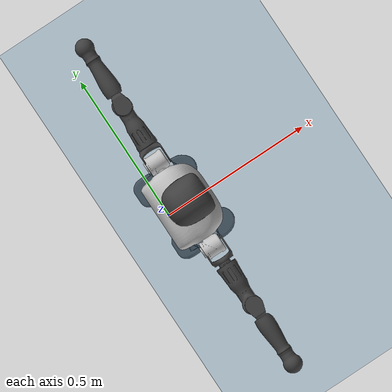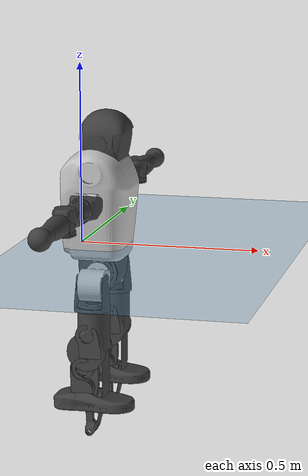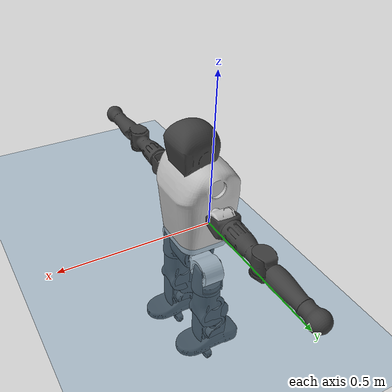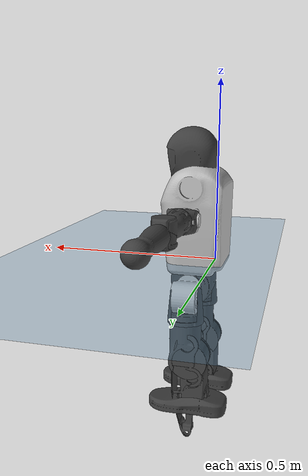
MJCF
<mujoco model="T1">
  <compiler angle="radian" assetdir="assets" balanceinertia="true" inertiafromgeom="false"/>

  <option timestep="0.005" density="1.2" viscosity="2e-05"/>

  <size nkey="1"/>

  <visual>
    <quality shadowsize="8192"/>
    <map shadowclip="0.5"/>
  </visual>

  <default>
    <default class="/">
      <joint armature="0.01" damping="0.01" frictionloss="0.1"/>
      <geom contype="0" conaffinity="0" group="1" solref="-1000 -80"/>
      <site size="0.01 0.005 0.005" group="5"/>
      <general forcelimited="true" biastype="affine" gainprm="25" biasprm="0 -25 -0.6"/>
      <default class="t1">
        <geom rgba="0.25 0.25 0.25 1"/>
        <default class="visual">
          <geom type="mesh" group="2"/>
        </default>
        <default class="collision">
          <geom group="3"/>
        </default>
        <default class="foot">
          <geom size="0.1115 0.05 0.015" type="box" condim="6" group="4" priority="1" solimp="0.015 1 0.015"/>
        </default>
        <default class="reward_collision_sphere">
          <geom group="5" rgba="1 0 0 1"/>
        </default>
      </default>
    </default>
  </default>

  <asset>
    <texture type="skybox" colorspace="auto" name="//unnamed_texture_0" builtin="gradient" rgb1="0.95 0.95 0.95" rgb2="0.95 0.95 0.95" width="100" height="600"/>
    <texture type="2d" colorspace="auto" name="texplane" builtin="checker" rgb1="0.345 0.575 0.748" rgb2="0.345 0.575 0.748" markrgb="1 1 1" width="512" height="512"/>
    <material name="MatPlane" class="/" texture="texplane" texuniform="true" texrepeat="2 2" specular="0.9"/>
    <mesh name="Trunk" class="/" file="Trunk.stl"/>
    <mesh name="H1" class="/" file="H1.stl"/>
    <mesh name="H2" class="/" file="H2.stl"/>
    <mesh name="AL1" class="/" file="AL1.stl"/>
    <mesh name="AL2" class="/" file="AL2.stl"/>
    <mesh name="AL3" class="/" file="AL3.stl"/>
    <mesh name="left_hand_link" class="/" file="left_hand_link.stl"/>
    <mesh name="AR1" class="/" file="AR1.stl"/>
    <mesh name="AR2" class="/" file="AR2.stl"/>
    <mesh name="AR3" class="/" file="AR3.stl"/>
    <mesh name="right_hand_link" class="/" file="right_hand_link.stl"/>
    <mesh name="Waist" class="/" file="Waist.stl"/>
    <mesh name="Hip_Pitch_Left" class="/" file="Hip_Pitch_Left.stl"/>
    <mesh name="Hip_Roll_Left" class="/" file="Hip_Roll_Left.stl"/>
    <mesh name="Hip_Yaw_Left" class="/" file="Hip_Yaw_Left.stl"/>
    <mesh name="Shank_Left" class="/" file="Shank_Left.stl"/>
    <mesh name="Ankle_Cross_Left" class="/" file="Ankle_Cross_Left.stl"/>
    <mesh name="left_foot_link" class="/" file="left_foot_link.stl"/>
    <mesh name="Hip_Pitch_Right" class="/" file="Hip_Pitch_Right.stl"/>
    <mesh name="Hip_Roll_Right" class="/" file="Hip_Roll_Right.stl"/>
    <mesh name="Hip_Yaw_Right" class="/" file="Hip_Yaw_Right.stl"/>
    <mesh name="Shank_Right" class="/" file="Shank_Right.stl"/>
    <mesh name="Ankle_Cross_Right" class="/" file="Ankle_Cross_Right.stl"/>
    <mesh name="right_foot_link" class="/" file="right_foot_link.stl"/>
  </asset>

  <worldbody>
    <geom name="floor" class="/" size="100 100 0.125" type="plane" group="0" material="MatPlane"/>
    <light name="toplight_shadow" class="/" pos="0 0 5" dir="0.0990148 0.0990148 -0.990148" type="directional" ambient="0.04 0.04 0.04" diffuse="0.55 0.55 0.55" specular="0.12 0.12 0.12"/>
    <light name="toplight_fill" class="/" pos="0 0 5" dir="0.0990148 0.0990148 -0.990148" type="directional" castshadow="false" ambient="0.04 0.04 0.04" diffuse="0.3 0.3 0.3" specular="0.08 0.08 0.08"/>
    <body name="trunk" childclass="t1" pos="-0.00116932 0.000144393 -0.00211689" quat="0.999999 0.000311222 0.000618716 -0.000787614">
      <inertial pos="0.0546976 -0.00356551 0.0643396" quat="0.999968 -0.000799592 -0.0068946 -0.00402136" mass="8.37427" diaginertia="0.0924617 0.0838785 0.0058877"/>
      <joint name="//unnamed_joint_0" type="free" armature="0" damping="0" frictionloss="0"/>
      <geom name="//unnamed_geom_1" class="visual" rgba="0.76 0.76 0.76 1" mesh="Trunk"/>
      <geom name="//unnamed_geom_2" class="collision" size="0.0657116 0.0876154 0.131423" pos="0.0596356 0 0.0753003" type="box"/>
      <geom name="//unnamed_geom_3" class="reward_collision_sphere" size="0.100758" pos="0.0596356 0 0.0627503"/>
      <geom name="//unnamed_geom_4" class="reward_collision_sphere" size="0.0131423" pos="0.0596356 0.0855979 0"/>
      <geom name="//unnamed_geom_5" class="reward_collision_sphere" size="0.0131423" pos="0.0596356 -0.0855979 0"/>
      <geom name="//unnamed_geom_6" class="reward_collision_sphere" size="0.0131423" pos="0.0596356 0.107753 0.11295"/>
      <geom name="//unnamed_geom_7" class="reward_collision_sphere" size="0.0131423" pos="0.0596356 -0.107753 0.11295"/>
      <site name="imu" pos="-0.0265302 0.0168996 0.00774636" size="0.00876154"/>
      <camera name="track" pos="0 -2.01407 0" quat="0.707107 0.707107 0 0" mode="trackcom"/>
      <camera name="ego_camera" pos="0.121259 0 0.263551" quat="-0.5 -0.5 0.5 0.5"/>
      <body name="H1" pos="0.0597026 -0.000345426 0.151586" quat="1 0.000120634 -0.000141728 6.30902e-05">
        <inertial pos="0.000873305 -0.00394175 0.0335796" quat="0.758656 -0.0200896 0.00634341 0.65115" mass="0.288698" diaginertia="0.000223252 0.000229976 1.3995e-05"/>
        <joint name="AAHead_yaw" pos="0 0 0" axis="-0.000619738 0.000965083 0.999999" range="-1.54149 1.56466" armature="0.00981127" damping="0.0159938" frictionloss="0.0771451"/>
        <geom name="//unnamed_geom_8" class="visual" mesh="H1"/>
        <body name="H2" pos="-0.000787294 0.00394177 0.0366672" quat="1 -4.68378e-05 -1.27709e-05 2.18888e-05">
          <inertial pos="0.00206756 -0.00317564 0.0612039" quat="0.987562 0.108888 -0.0841293 -0.0760695" mass="0.400992" diaginertia="0.00204101 0.00195968 0.000164428"/>
          <joint name="Head_pitch" pos="0 0 0" axis="-0.0118543 -0.999924 -0.00335984" range="-1.23603 0.335256" armature="0.010079" damping="0.00483908" frictionloss="0.0874535"/>
          <geom name="//unnamed_geom_9" class="visual" mesh="H2"/>
          <geom name="//unnamed_geom_10" class="collision" size="0.0700923" pos="0.00993927 0 0.0690253"/>
          <geom name="//unnamed_geom_11" class="reward_collision_sphere" size="0.0788539" pos="0.0198785 0 0.0627503"/>
        </body>
      </body>
      <body name="AL1" pos="0.0590532 0.10906 0.139927" quat="1 -0.000185889 -0.000176714 0.000261648">
        <inertial pos="0.000764834 0.0463003 -0.0040915" quat="0.501429 0.495722 -0.506169 0.49661" mass="0.344395" diaginertia="0.00128154 0.00134049 2.89117e-05"/>
        <joint name="Left_Shoulder_Pitch" pos="0 0 0" axis="-0.00784849 0.99994 -0.00767348" stiffness="0.0187461" range="-3.23642 1.23134" armature="0.00983026" damping="0.0200335" frictionloss="0.0908647"/>
        <geom name="//unnamed_geom_12" class="visual" rgba="0.76 0.76 0.76 1" mesh="AL1"/>
        <body name="AL2" pos="0.00412946 0.0437452 0.0026419" quat="0.999996 -0.00161936 0.000140237 -0.00211346">
          <inertial pos="0.00566428 0.0382663 0.00179259" quat="0.495273 0.506279 -0.492775 0.505528" mass="0.0945006" diaginertia="0.000360721 0.000330269 1.57673e-05"/>
          <joint name="Left_Shoulder_Roll" pos="0 0 0" axis="-0.999547 -0.0301043 0.000408882" stiffness="0.000135217" range="-1.56853 1.7294" armature="0.00910693" damping="0.0304431" frictionloss="0.0793422"/>
          <geom name="//unnamed_geom_13" class="visual" mesh="AL2"/>
          <body name="AL3" pos="0.00190742 0.0574077 0.00240164" quat="0.999996 0.00177911 -0.00218985 -0.000848319">
            <inertial pos="0.00211597 0.0875297 0.000292001" quat="0.709914 0.704194 -0.00778125 -0.00854402" mass="0.653341" diaginertia="0.0116212 0.0127457 5.66612e-05"/>
            <joint name="Left_Elbow_Pitch" pos="0 0 0" axis="7.56556e-07 -1 1.53426e-05" stiffness="0.0165403" range="-2.29535 2.26131" armature="0.00897838" damping="0.00914801" frictionloss="0.0875536"/>
            <geom name="//unnamed_geom_14" class="visual" mesh="AL3"/>
            <geom name="//unnamed_geom_15" class="collision" size="0.0262846 0.0657116" pos="0 0.0503517 0" quat="0.707105 0.707108 0 0" type="cylinder"/>
            <geom name="//unnamed_geom_16" class="reward_collision_sphere" size="0.0315416"/>
            <body name="left_hand_link" pos="0.00253461 0.143163 -0.000119412" quat="0.999998 -0.000123795 -0.00188262 0.000940749">
              <inertial pos="-0.00117836 0.109241 0.00415595" quat="0.696702 0.717313 -0.00349391 -0.00746726" mass="0.233683" diaginertia="0.00856961 0.00909578 2.21804e-05"/>
              <joint name="Left_Elbow_Yaw" pos="0 0 0" axis="-0.00764731 0.011595 0.999904" range="-2.43634 -0.044667" armature="0.00858452" damping="0.0115211" frictionloss="0.0644114"/>
              <geom name="//unnamed_geom_17" class="visual" mesh="left_hand_link"/>
              <geom name="//unnamed_geom_18" class="collision" size="0.0262846 0.0766635" pos="0 0.130914 0" quat="0.707105 0.707108 0 0" type="cylinder"/>
              <geom name="//unnamed_geom_19" class="reward_collision_sphere" size="0.0438077"/>
              <geom name="//unnamed_geom_20" class="reward_collision_sphere" size="0.0306654" pos="0 0.110774 0"/>
              <geom name="//unnamed_geom_21" class="reward_collision_sphere" size="0.0306654" pos="0 0.216512 0"/>
            </body>
          </body>
        </body>
      </body>
      <body name="AR1" pos="0.0600963 -0.108087 0.140079" quat="0.999998 -0.000377324 0.00177993 0.000416757">
        <inertial pos="-4.55471e-05 -0.047667 0.00275452" quat="0.506281 0.499053 -0.505054 0.489434" mass="0.351805" diaginertia="0.00130802 0.00126568 2.75461e-05"/>
        <joint name="Right_Shoulder_Pitch" pos="0 0 0" axis="0.00396509 -0.999991 0.00121058" range="-1.31246 3.25545" armature="0.00842525" damping="0" frictionloss="0.0913251"/>
        <geom name="//unnamed_geom_22" class="visual" rgba="0.76 0.76 0.76 1" mesh="AR1"/>
        <body name="AR2" pos="0.0041113 -0.0491631 0.000785188" quat="1 0.000105011 0.000332754 0.000219282">
          <inertial pos="0.00357312 -0.0364822 0.00123707" quat="0.511373 0.487423 -0.512421 0.488202" mass="0.113213" diaginertia="0.000415819 0.00039086 1.7029e-05"/>
          <joint name="Right_Shoulder_Roll" pos="0 0 0" axis="-0.999986 0.000829801 -0.0053113" range="-1.72702 1.65554" armature="0.00885125" damping="0.017233" frictionloss="0.104388"/>
          <geom name="//unnamed_geom_23" class="visual" mesh="AR2"/>
          <body name="AR3" pos="-0.000672397 -0.0662651 -0.0033362" quat="0.999999 8.4556e-05 0.000932331 0.000427351">
            <inertial pos="2.67632e-05 -0.0883334 -0.00191438" quat="0.722186 0.691386 -0.00799049 -0.0192086" mass="0.672533" diaginertia="0.0122493 0.0130279 5.7911e-05"/>
            <joint name="Right_Elbow_Pitch" pos="0 0 0" axis="-0.00275465 0.999991 0.00309243" range="-2.26387 2.26941" armature="0.00761951" damping="0.00502426" frictionloss="0.0679601"/>
            <geom name="//unnamed_geom_24" class="visual" mesh="AR3"/>
            <geom name="//unnamed_geom_25" class="collision" size="0.0262846 0.0657116" pos="0 -0.0503517 0" quat="0.707105 0.707108 0 0" type="cylinder"/>
            <geom name="//unnamed_geom_26" class="reward_collision_sphere" size="0.0315416"/>
            <body name="right_hand_link" pos="0.00332557 -0.150443 0.0022411" quat="1 -0.000338787 -7.44963e-05 8.08891e-06">
              <inertial pos="0.00231137 -0.110122 -0.0036237" quat="0.694541 0.719406 0.00732527 0.00366878" mass="0.240847" diaginertia="0.00845653 0.00894583 2.23638e-05"/>
              <joint name="Right_Elbow_Yaw" pos="0 0 0" axis="-0.0137764 0.00132977 0.999904" range="0.0425122 2.48588" armature="0.00626206" damping="0.00891044" frictionloss="0.088231"/>
              <geom name="//unnamed_geom_27" class="visual" mesh="right_hand_link"/>
              <geom name="//unnamed_geom_28" class="collision" size="0.0262846 0.0766635" pos="0 -0.130914 0" quat="0.707105 0.707108 0 0" type="cylinder"/>
              <geom name="//unnamed_geom_29" class="reward_collision_sphere" size="0.0438077"/>
              <geom name="//unnamed_geom_30" class="reward_collision_sphere" size="0.0306654" pos="0 -0.110774 0"/>
              <geom name="//unnamed_geom_31" class="reward_collision_sphere" size="0.0306654" pos="0 -0.216512 0"/>
            </body>
          </body>
        </body>
      </body>
      <body name="Waist" pos="0.0623814 0.00246387 -0.0702895" quat="1 0.000359835 0.000243568 -0.000466074">
        <inertial pos="-0.00223238 -0.00137338 0.00276813" quat="0.983817 -0.0013521 -0.178961 0.00867245" mass="1.76915" diaginertia="0.00534582 0.00594477 0.000488603"/>
        <joint name="Waist" pos="0 0 0" axis="0.00383914 -0.00821612 0.999959" range="-1.67901 1.59581" armature="0.00989365" damping="0.0201397" frictionloss="0.0786818"/>
        <geom name="//unnamed_geom_32" class="visual" mesh="Waist"/>
        <body name="Hip_Pitch_Left" pos="0.00411378 0.103503 0.00116281" quat="0.999997 0.00114324 -0.00112367 0.0015651">
          <inertial pos="0.0011742 -0.0124733 -0.0108901" quat="0.974727 0.223041 0.0125671 0.00179338" mass="0.668545" diaginertia="0.00176096 0.00140807 0.000121584"/>
          <joint name="Left_Hip_Pitch" pos="0 0 0" axis="-0.0131373 0.999793 0.0155567" range="-1.78443 1.56049" armature="0.00876581" damping="0.0204181" frictionloss="0.0874683"/>
          <geom name="//unnamed_geom_33" class="visual" rgba="0.76 0.76 0.76 1" mesh="Hip_Pitch_Left"/>
          <body name="Hip_Roll_Left" pos="0.000556049 0.000159259 -0.0124314" quat="0.999999 -0.000425634 0.00160629 0.000216831">
            <inertial pos="0.00417477 0.000375837 -0.0364501" quat="0.706532 -0.00633795 -0.00571256 0.707629" mass="0.258699" diaginertia="0.00167061 0.00164908 5.22996e-05"/>
            <joint name="Left_Hip_Roll" pos="0 0 0" axis="-0.999968 -0.000765703 0.00798635" stiffness="0.00320206" range="-1.51726 0.159695" armature="0.00843845" damping="0.000589342" frictionloss="0.0782181"/>
            <geom name="//unnamed_geom_34" class="visual" mesh="Hip_Roll_Left"/>
            <geom name="//unnamed_geom_35" class="reward_collision_sphere" size="0.0481885"/>
            <body name="Hip_Yaw_Left" pos="-0.00236437 -6.44127e-05 -0.0480302" quat="1 4.95664e-05 -0.0001508 0.000237824">
              <inertial pos="-0.00440633 -0.00121693 -0.0584471" quat="0.687578 -0.0530909 -0.0191987 0.723913" mass="1.43755" diaginertia="0.0256457 0.0279419 0.000253402"/>
              <joint name="Left_Hip_Yaw" pos="0 0 0" axis="0.00928421 -0.0147725 -0.999848" stiffness="0.0091088" range="-0.99364 1.06731" armature="0.00857958" damping="0" frictionloss="0.0885526"/>
              <geom name="//unnamed_geom_36" class="visual" mesh="Hip_Yaw_Left"/>
              <geom name="//unnamed_geom_37" class="collision" size="0.0438077 0.0700923" type="cylinder"/>
              <body name="Shank_Left" pos="-0.0129885 -0.00077051 -0.0840501" quat="1 -0.000213661 -8.96559e-05 -2.47096e-05">
                <inertial pos="-0.00647578 0.00212152 -0.0763299" quat="0.997212 0.00246195 -0.0335263 0.0666145" mass="1.15343" diaginertia="0.0325548 0.0345385 0.000175178"/>
                <joint name="Left_Knee_Pitch" pos="0 0 0" axis="0.00224087 0.999986 0.00475286" range="0.0307086 2.35936" armature="0.00972178" damping="0.000307485" frictionloss="0.074606"/>
                <geom name="//unnamed_geom_38" class="visual" mesh="Shank_Left"/>
                <geom name="//unnamed_geom_39" class="collision" size="0.0438077 0.0657116" pos="0 0 -0.0753003" type="cylinder"/>
                <geom name="//unnamed_geom_40" class="reward_collision_sphere" size="0.05695"/>
                <body name="Ankle_Cross_Left" pos="-0.00202951 -1.41888e-05 -0.174341" quat="1 6.29719e-05 1.71221e-05 5.71106e-05">
                  <inertial pos="-0.00579029 0.000496023 0.000491298" quat="0.434732 0.55367 0.554062 0.444379" mass="0.0482846" diaginertia="2.57706e-05 2.56323e-05 1.05222e-06"/>
                  <joint name="Left_Ankle_Pitch" pos="0 0 0" axis="0.000406711 0.999998 -0.00184822" range="-0.75507 0.349853" armature="0.00862987" damping="0.0220355" frictionloss="0.073113"/>
                  <geom name="//unnamed_geom_41" class="visual" mesh="Ankle_Cross_Left"/>
                  <body name="left_foot_link" pos="-0.0037726 -8.79177e-05 -0.00271067" quat="1 0.00036218 0.000628415 0.000525738">
                    <inertial pos="-0.00211555 0.00419685 -0.00322862" quat="0.000273132 0.619022 -0.00203162 0.785371" mass="0.459356" diaginertia="0.00260778 0.0024791 0.000220332"/>
                    <joint name="Left_Ankle_Roll" pos="0 0 0" axis="-0.999933 0.00994955 -0.0059473" stiffness="0.00481796" range="-0.431253 0.411379" armature="0.00841692" damping="0" frictionloss="0.0970629"/>
                    <geom name="//unnamed_geom_42" class="visual" mesh="left_foot_link"/>
                    <geom name="left_foot" class="foot" size="0.109554 0.0330549 0.0135505" pos="0.00993927 0 -0.00941254"/>
                    <geom name="//unnamed_geom_44" class="reward_collision_sphere" size="0.04556" pos="0.00993927 0 -0.00941254"/>
                    <geom name="//unnamed_geom_45" class="reward_collision_sphere" size="0.0262846" pos="0.094423 -0.0231618 -0.00941254"/>
                    <geom name="//unnamed_geom_46" class="reward_collision_sphere" size="0.0262846" pos="-0.0695749 -0.0231618 -0.00941254"/>
                    <site name="left_foot" class="foot" pos="0.00993927 0 -0.00941254" size="0.00876154"/>
                  </body>
                </body>
              </body>
            </body>
          </body>
        </body>
        <body name="Hip_Pitch_Right" pos="0.000372247 -0.103965 -0.00431247" quat="1 -0.000137329 2.74749e-05 -0.000150869">
          <inertial pos="0.000704042 0.0100214 -0.0155425" quat="0.97262 -0.232171 0.00660595 0.00797265" mass="0.708088" diaginertia="0.00180023 0.00157109 0.000121888"/>
          <joint name="Right_Hip_Pitch" pos="0 0 0" axis="0.00342935 -0.999934 0.0109353" range="-1.56372 1.82469" armature="0.00768182" damping="0" frictionloss="0.0886697"/>
          <geom name="//unnamed_geom_47" class="visual" rgba="0.76 0.76 0.76 1" mesh="Hip_Pitch_Right"/>
          <body name="Hip_Roll_Right" pos="-0.000973896 -0.000499394 -0.0132295" quat="0.999996 -3.38337e-05 0.00158668 -0.00227281">
            <inertial pos="-0.00394736 0.00143142 -0.0327313" quat="0.703301 -0.0120986 -0.0136255 0.710659" mass="0.264635" diaginertia="0.00174694 0.00165068 5.06999e-05"/>
            <joint name="Right_Hip_Roll" pos="0 0 0" axis="-1 -0.00044112 -0.00078553" range="-0.182242 1.52874" armature="0.00948708" damping="0.0142612" frictionloss="0.0886841"/>
            <geom name="//unnamed_geom_48" class="visual" mesh="Hip_Roll_Right"/>
            <geom name="//unnamed_geom_49" class="reward_collision_sphere" size="0.0481885"/>
            <body name="Hip_Yaw_Right" pos="0.00156023 0.0020149 -0.0548695" quat="0.999998 -0.000565306 -0.00165636 -0.000255492">
              <inertial pos="-0.00697923 -0.00313771 -0.0544192" quat="0.714743 -0.0338882 -0.0363835 0.697618" mass="1.42591" diaginertia="0.0227575 0.0232644 0.0002435"/>
              <joint name="Right_Hip_Yaw" pos="0 0 0" axis="-0.00884767 0.00870732 -0.999923" stiffness="0.0138777" range="-0.987085 1.11282" armature="0.00831351" damping="0.0176709" frictionloss="0.104479"/>
              <geom name="//unnamed_geom_50" class="visual" mesh="Hip_Yaw_Right"/>
              <geom name="//unnamed_geom_51" class="collision" size="0.0438077 0.0700923" type="cylinder"/>
              <body name="Shank_Right" pos="-0.00971126 -0.000952535 -0.0863614" quat="0.999998 -0.000632056 -0.000621645 -0.00170042">
                <inertial pos="-0.0091041 0.000106451 -0.0798157" quat="0.999242 -0.00197482 -0.0233798 -0.031048" mass="1.08935" diaginertia="0.0339607 0.0365315 0.000189886"/>
                <joint name="Right_Knee_Pitch" pos="0 0 0" axis="-0.0156126 -0.999862 0.00570265" range="-2.38821 0.0321263" armature="0.00965142" damping="0.0093626" frictionloss="0.093221"/>
                <geom name="//unnamed_geom_52" class="visual" mesh="Shank_Right"/>
                <geom name="//unnamed_geom_53" class="collision" size="0.0438077 0.0657116" pos="0 0 -0.0753003" type="cylinder"/>
                <geom name="//unnamed_geom_54" class="reward_collision_sphere" size="0.05695"/>
                <body name="Ankle_Cross_Right" pos="0.00282057 -0.000823253 -0.17462" quat="0.999999 -0.000464179 0.000803826 0.00134922">
                  <inertial pos="-0.00417948 -0.000790615 -0.00387174" quat="0.438571 0.553454 0.554431 0.440399" mass="0.0520126" diaginertia="2.85371e-05 2.69238e-05 1.08878e-06"/>
                  <joint name="Right_Ankle_Pitch" pos="0 0 0" axis="-0.00272562 -0.999594 0.0283451" stiffness="0.0161898" range="-0.343323 0.895394" armature="0.00779572" damping="0.0113919" frictionloss="0.111564"/>
                  <geom name="//unnamed_geom_55" class="visual" mesh="Ankle_Cross_Right"/>
                  <body name="right_foot_link" pos="-0.00101929 -0.00317819 -0.00820107" quat="1 0.000145965 -8.23994e-05 -2.51402e-05">
                    <inertial pos="0.00221754 -0.00223175 -0.00265373" quat="0.00320624 0.629557 0.00282972 0.776943" mass="0.453497" diaginertia="0.00269754 0.00258783 0.000214102"/>
                    <joint name="Right_Ankle_Roll" pos="0 0 0" axis="-0.99994 0.00598022 -0.00914884" range="-0.552235 0.457811" armature="0.00955867" damping="0.0114781" frictionloss="0.0960195"/>
                    <geom name="//unnamed_geom_56" class="visual" mesh="right_foot_link"/>
                    <geom name="right_foot" class="foot" size="0.118556 0.0358919 0.0121739" pos="0.00993927 0 -0.00941254"/>
                    <geom name="//unnamed_geom_58" class="reward_collision_sphere" size="0.0350462"/>
                    <geom name="//unnamed_geom_59" class="reward_collision_sphere" size="0.0262846" pos="0.00993927 0 -0.00941254"/>
                    <geom name="//unnamed_geom_60" class="reward_collision_sphere" size="0.0262846" pos="0.094423 0.0231618 -0.00941254"/>
                    <geom name="//unnamed_geom_61" class="reward_collision_sphere" size="0.0262846" pos="-0.0695749 0.0231618 -0.00941254"/>
                    <site name="right_foot" class="foot" pos="0.00993927 0 -0.00941254" size="0.00876154"/>
                  </body>
                </body>
              </body>
            </body>
          </body>
        </body>
      </body>
    </body>
  </worldbody>

  <contact>
    <pair class="/" geom1="floor" geom2="left_foot" name="//unnamed_contact_0"/>
    <pair class="/" geom1="floor" geom2="right_foot" name="//unnamed_contact_1"/>
  </contact>

  <actuator>
    <general name="AAHead_yaw" class="/" joint="AAHead_yaw" forcerange="-5.92096 5.92096" gainprm="21.0991" biasprm="0 -21.0991 -0.558201"/>
    <general name="Head_pitch" class="/" joint="Head_pitch" forcerange="-6.64682 6.64682" gainprm="21.0991" biasprm="0 -21.0991 -0.558201"/>
    <general name="Left_Shoulder_Pitch" class="/" joint="Left_Shoulder_Pitch" forcerange="-15.7176 15.7176" gainprm="21.0991" biasprm="0 -21.0991 -0.558201"/>
    <general name="Left_Shoulder_Roll" class="/" joint="Left_Shoulder_Roll" forcerange="-15.8086 15.8086" gainprm="21.0991" biasprm="0 -21.0991 -0.558201"/>
    <general name="Left_Elbow_Pitch" class="/" joint="Left_Elbow_Pitch" forcerange="-14.2103 14.2103" gainprm="21.0991" biasprm="0 -21.0991 -0.558201"/>
    <general name="Left_Elbow_Yaw" class="/" joint="Left_Elbow_Yaw" forcerange="-14.4223 14.4223" gainprm="21.0991" biasprm="0 -21.0991 -0.558201"/>
    <general name="Right_Shoulder_Pitch" class="/" joint="Right_Shoulder_Pitch" forcerange="-15.1237 15.1237" gainprm="21.0991" biasprm="0 -21.0991 -0.558201"/>
    <general name="Right_Shoulder_Roll" class="/" joint="Right_Shoulder_Roll" forcerange="-16.1328 16.1328" gainprm="21.0991" biasprm="0 -21.0991 -0.558201"/>
    <general name="Right_Elbow_Pitch" class="/" joint="Right_Elbow_Pitch" forcerange="-14.5477 14.5477" gainprm="21.0991" biasprm="0 -21.0991 -0.558201"/>
    <general name="Right_Elbow_Yaw" class="/" joint="Right_Elbow_Yaw" forcerange="-13.9643 13.9643" gainprm="21.0991" biasprm="0 -21.0991 -0.558201"/>
    <general name="Waist" class="/" joint="Waist" forcerange="-27.5273 27.5273" gainprm="21.0991" biasprm="0 -21.0991 -0.558201"/>
    <general name="Left_Hip_Pitch" class="/" joint="Left_Hip_Pitch" forcerange="-47.483 47.483" gainprm="21.0991" biasprm="0 -21.0991 -0.558201"/>
    <general name="Left_Hip_Roll" class="/" joint="Left_Hip_Roll" forcerange="-28.8787 28.8787" gainprm="21.0991" biasprm="0 -21.0991 -0.558201"/>
    <general name="Left_Hip_Yaw" class="/" joint="Left_Hip_Yaw" forcerange="-28.5044 28.5044" gainprm="21.0991" biasprm="0 -21.0991 -0.558201"/>
    <general name="Left_Knee_Pitch" class="/" joint="Left_Knee_Pitch" forcerange="-46.0558 46.0558" gainprm="21.0991" biasprm="0 -21.0991 -0.558201"/>
    <general name="Left_Ankle_Pitch" class="/" joint="Left_Ankle_Pitch" forcerange="-19.1699 19.1699" gainprm="21.0991" biasprm="0 -21.0991 -0.558201"/>
    <general name="Left_Ankle_Roll" class="/" joint="Left_Ankle_Roll" forcerange="-13.6437 13.6437" gainprm="21.0991" biasprm="0 -21.0991 -0.558201"/>
    <general name="Right_Hip_Pitch" class="/" joint="Right_Hip_Pitch" forcerange="-32.8966 32.8966" gainprm="21.0991" biasprm="0 -21.0991 -0.558201"/>
    <general name="Right_Hip_Roll" class="/" joint="Right_Hip_Roll" forcerange="-28.7532 28.7532" gainprm="21.0991" biasprm="0 -21.0991 -0.558201"/>
    <general name="Right_Hip_Yaw" class="/" joint="Right_Hip_Yaw" forcerange="-28.4675 28.4675" gainprm="21.0991" biasprm="0 -21.0991 -0.558201"/>
    <general name="Right_Knee_Pitch" class="/" joint="Right_Knee_Pitch" forcerange="-51.8753 51.8753" gainprm="21.0991" biasprm="0 -21.0991 -0.558201"/>
    <general name="Right_Ankle_Pitch" class="/" joint="Right_Ankle_Pitch" forcerange="-16.8569 16.8569" gainprm="21.0991" biasprm="0 -21.0991 -0.558201"/>
    <general name="Right_Ankle_Roll" class="/" joint="Right_Ankle_Roll" forcerange="-15.3636 15.3636" gainprm="21.0991" biasprm="0 -21.0991 -0.558201"/>
  </actuator>

  <sensor>
    <gyro site="imu" name="imu_angular_velocity"/>
    <velocimeter site="imu" name="imu_linear_velocity"/>
    <framelinvel objtype="site" objname="left_foot" name="left_foot_global_linear_velocity"/>
    <framelinvel objtype="site" objname="right_foot" name="right_foot_global_linear_velocity"/>
  </sensor>

  <keyframe>
    <key name="home" qpos="0 0 0.6385 1 0 0 0 0 0 0 1.4 0 -0.4 0 -1.4 0 0.4 0 -0.4 0 0 0.8 -0.4 0 0.4 0 0 -0.8 0.4 0"/>
  </keyframe>
</mujoco>
